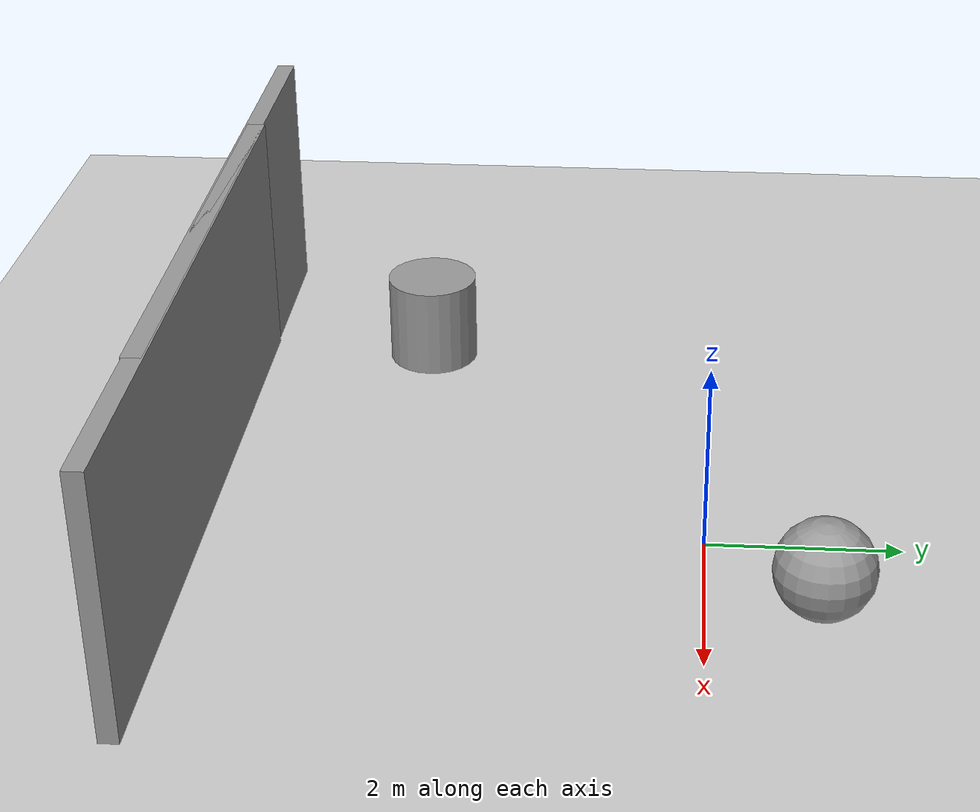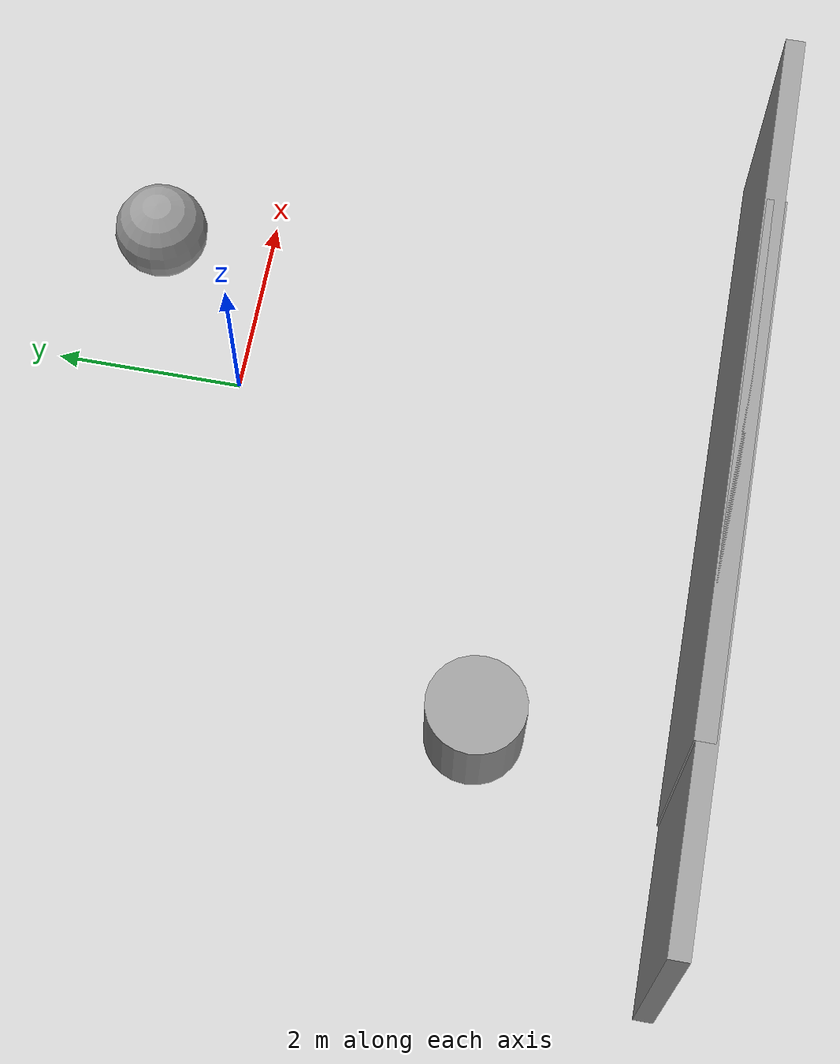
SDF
<sdf version="1.6">
 <world name="default">
  <light name="sun" type="directional">
   <pose>0 0 10 0 -0 0</pose>
   <diffuse>0.8 0.8 0.8 1</diffuse>
   <specular>0.2 0.2 0.2 1</specular>
   <attenuation>
    <range>1000</range>
    <constant>0.9</constant>
    <linear>0.01</linear>
    <quadratic>0.001</quadratic>
   </attenuation>
   <direction>-0.5 0.1 -0.9</direction>
  </light>
  <model name="ground_plane">
   <static>1</static>
   <link name="link">
    <collision name="collision">
     <geometry><plane><normal>0 0 1</normal><size>100 100</size></plane></geometry>
     <surface><friction><ode><mu>100</mu><mu2>50</mu2></ode></friction></surface>
    </collision>
    <visual name="visual">
     <cast_shadows>0</cast_shadows>
     <geometry><plane><normal>0 0 1</normal><size>100 100</size></plane></geometry>
     <material>
      <script><uri>file://media/materials/scripts/gazebo.material</uri><name>Gazebo/Grey</name></script>
     </material>
    </visual>
   </link>
  </model>
  <gravity>0 0 -9.8</gravity>
  <magnetic_field>6e-06 2.3e-05 -4.2e-05</magnetic_field>
  <atmosphere type="adiabatic"/>
  <physics name="default_physics" default="0" type="ode">
   <max_step_size>0.001</max_step_size>
   <real_time_factor>1</real_time_factor>
   <real_time_update_rate>1000</real_time_update_rate>
  </physics>
  <scene><ambient>0.4 0.4 0.4 1</ambient><background>0.7 0.7 0.7 1</background><shadows>1</shadows></scene>
  <spherical_coordinates>
   <surface_model>EARTH_WGS84</surface_model>
   <latitude_deg>0</latitude_deg>
   <longitude_deg>0</longitude_deg>
   <elevation>0</elevation>
   <heading_deg>0</heading_deg>
  </spherical_coordinates>
  <model name="grey_wall">
   <static>1</static>
   <link name="link">
    <pose>0 0 1.4 0 -0 0</pose>
    <collision name="collision"><geometry><box><size>7.5 0.2 2.8</size></box></geometry></collision>
    <visual name="visual">
     <cast_shadows>0</cast_shadows>
     <geometry><box><size>7.5 0.2 2.8</size></box></geometry>
     <material>
      <script>
       <uri>model://grey_wall/materials/scripts</uri>
       <uri>model://grey_wall/materials/textures</uri>
       <name>vrc/grey_wall</name>
      </script>
     </material>
    </visual>
   </link>
   <pose>-2.20834 -5.21365 0 0 -0 0</pose>
  </model>
  <model name="grey_wall_0">
   <static>1</static>
   <link name="link">
    <pose>0 0 1.4 0 -0 0</pose>
    <collision name="collision"><geometry><box><size>7.5 0.2 2.8</size></box></geometry></collision>
    <visual name="visual">
     <cast_shadows>0</cast_shadows>
     <geometry><box><size>7.5 0.2 2.8</size></box></geometry>
     <material>
      <script>
       <uri>model://grey_wall/materials/scripts</uri>
       <uri>model://grey_wall/materials/textures</uri>
       <name>vrc/grey_wall</name>
      </script>
     </material>
    </visual>
   </link>
   <pose>-0.29047 -5.19512 0 0 -0 0</pose>
  </model>
  <model name="unit_sphere">
   <pose>1.35669 1.10536 0.6898 0 -0 0</pose>
   <link name="link">
    <inertial>
     <mass>1</mass>
     <inertia><ixx>0.1</ixx><ixy>0</ixy><ixz>0</ixz><iyy>0.1</iyy><iyz>0</iyz><izz>0.1</izz></inertia>
    </inertial>
    <collision name="collision"><geometry><sphere><radius>0.5</radius></sphere></geometry></collision>
    <visual name="visual">
     <geometry><sphere><radius>0.5</radius></sphere></geometry>
     <material>
      <script><name>Gazebo/Grey</name><uri>file://media/materials/scripts/gazebo.material</uri></script>
     </material>
    </visual>
   </link>
  </model>
  <model name="unit_cylinder">
   <pose>-3.51677 -3.1587 0.689802 -2e-06 -3e-06 -9e-06</pose>
   <link name="link">
    <inertial>
     <mass>1</mass>
     <inertia><ixx>0.145833</ixx><ixy>0</ixy><ixz>0</ixz><iyy>0.145833</iyy><iyz>0</iyz><izz>0.125</izz></inertia>
    </inertial>
    <collision name="collision">
     <geometry><cylinder><radius>0.5</radius><length>1</length></cylinder></geometry>
    </collision>
    <visual name="visual">
     <geometry><cylinder><radius>0.5</radius><length>1</length></cylinder></geometry>
     <material>
      <script><name>Gazebo/Grey</name><uri>file://media/materials/scripts/gazebo.material</uri></script>
     </material>
    </visual>
   </link>
  </model>
 </world>
</sdf>
